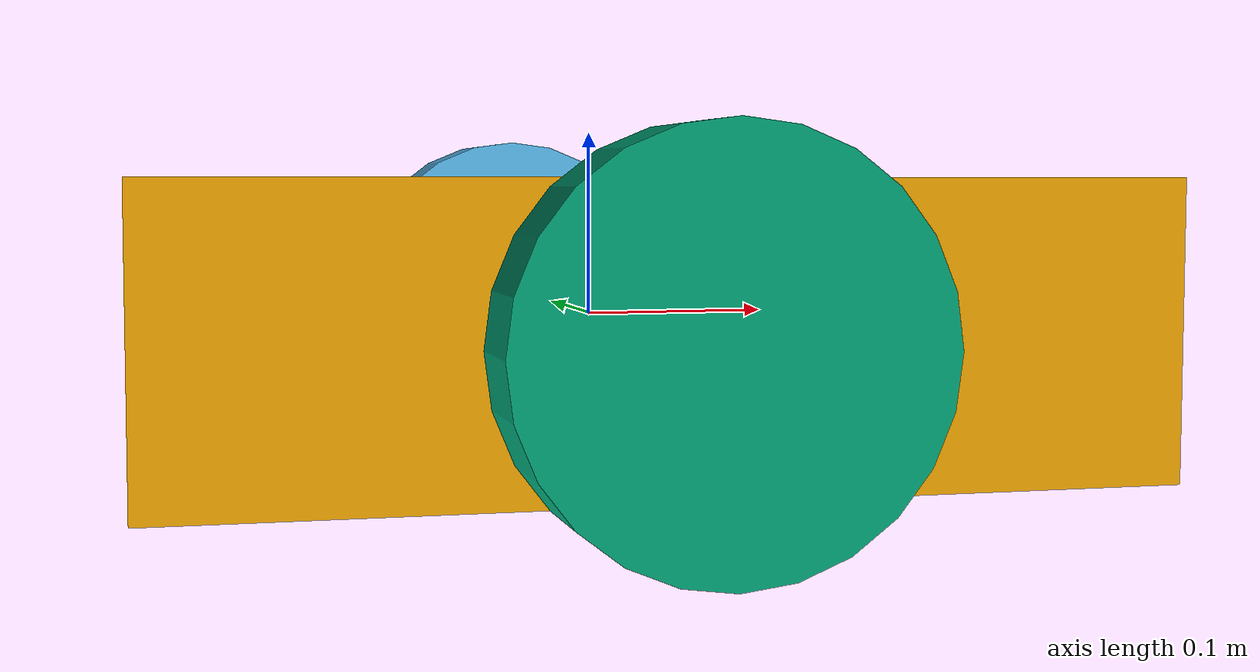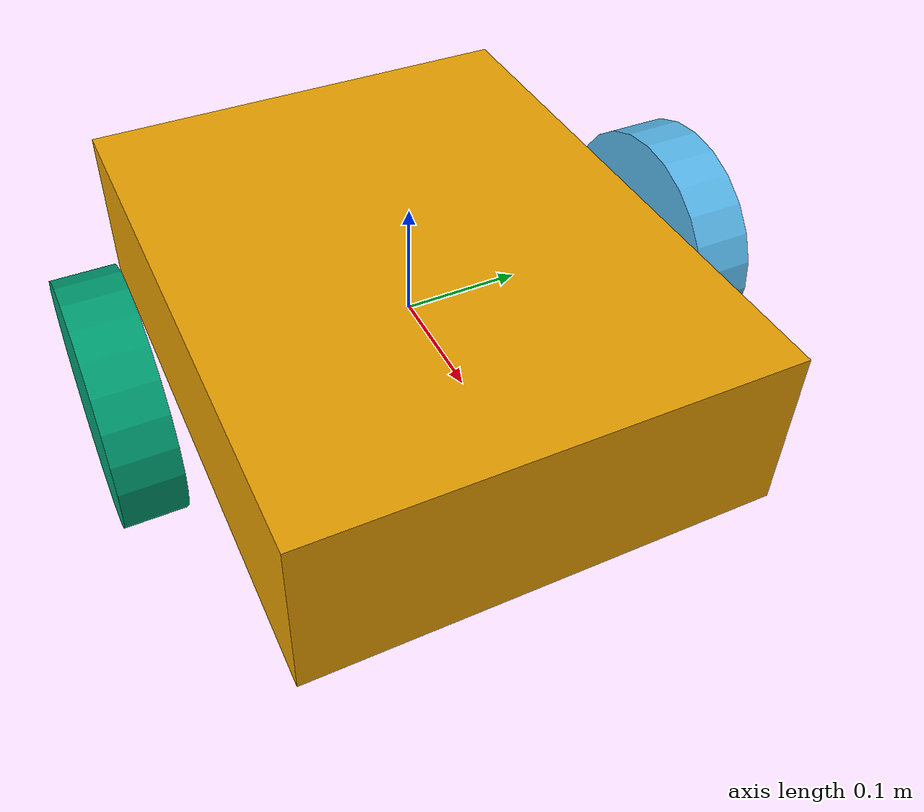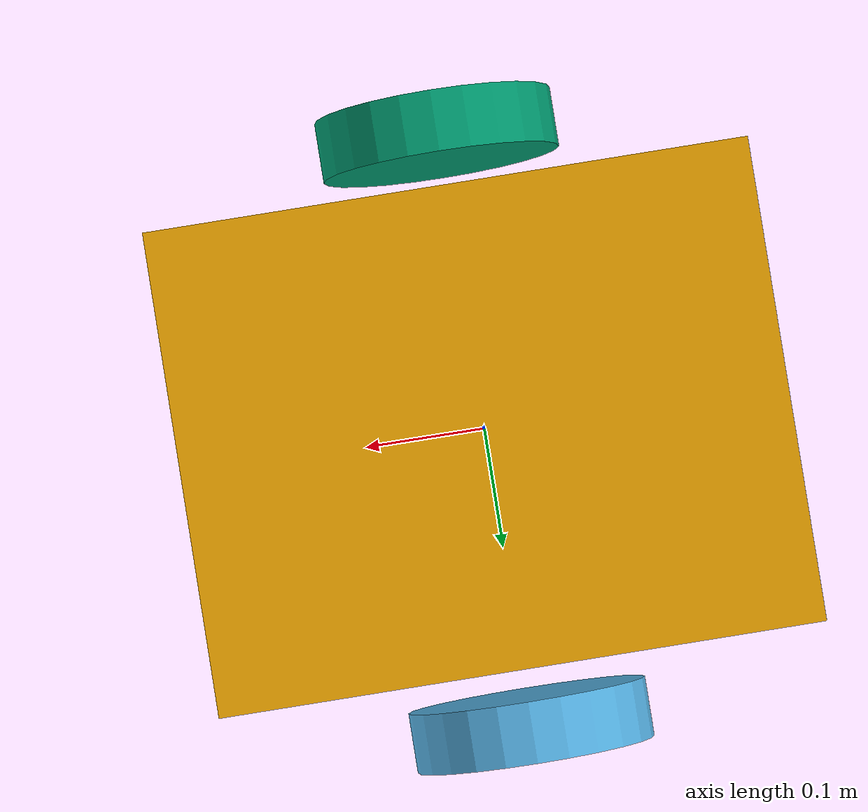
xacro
<?xml version="1.0"?>
<robot xmlns:xacro="http://www.ros.org/wiki/xacro" name="robot_base">
    <link name="base_link">
        <visual>
            <geometry>
                <box size="0.5 0.4 0.15"/>
            </geometry>
            <origin xyz="0 0 0"/>
        </visual>

        <collision>
            <geometry>
                <box size="0.5 0.4 0.15"/>
            </geometry>
        </collision>

        <inertial>
            <mass value="5"/>
            <origin xyz="0 0 0"/>
            <inertia ixx="0.1" ixy="0" ixz="0" iyy="0.1" iyz="0" izz="0.1"/>
        </inertial>
    </link>

    <link name="left_wheel_link">
        <visual>
            <geometry>
                <cylinder radius="0.1" length="0.05"/>
            </geometry>
            <origin xyz="0 0 0" rpy="1.5708 0 0"/>
        </visual>

        <collision>
            <origin xyz="0 0 0" rpy="1.5708 0 0"/>
            <geometry>
                <cylinder radius="0.1" length="0.05"/>
            </geometry>
        </collision>

        <inertial>
            <origin xyz="0 0 0"/>
            <mass value="0.5"/>
            <inertia
                ixx="0.00135417"
                ixy="0"
                ixz="0"
                iyy="0.0025"
                iyz="0"
                izz="0.00135417"/>
        </inertial>
    </link>
    <joint name="left_wheel_joint" type="continuous">
        <parent link="base_link"/>
        <child link="left_wheel_link"/>
        <origin xyz="0 0.25 0" rpy="0 0 0"/>
        <axis xyz="0 1 0"/>
    </joint>

    <link name="right_wheel_link">
        <visual>
            <geometry>
                <cylinder radius="0.1" length="0.05"/>
            </geometry>
            <origin xyz="0 0 0" rpy="1.5708 0 0"/>
        </visual>

        <collision>
            <origin xyz="0 0 0" rpy="1.5708 0 0"/>
            <geometry>
                <cylinder radius="0.1" length="0.05"/>
            </geometry>
        </collision>

        <inertial>
            <origin xyz="0 0 0"/>
            <mass value="0.5"/>
            <inertia
                ixx="0.00135417"
                ixy="0"
                ixz="0"
                iyy="0.0025"
                iyz="0"
                izz="0.00135417"/>
        </inertial>
    </link>

    <joint name="right_wheel_joint" type="continuous">
        <parent link="base_link"/>
        <child link="right_wheel_link"/>
        <origin xyz="0 -0.25 0" rpy="0 0 0"/>
        <axis xyz="0 1 0"/>
    </joint>
</robot>
